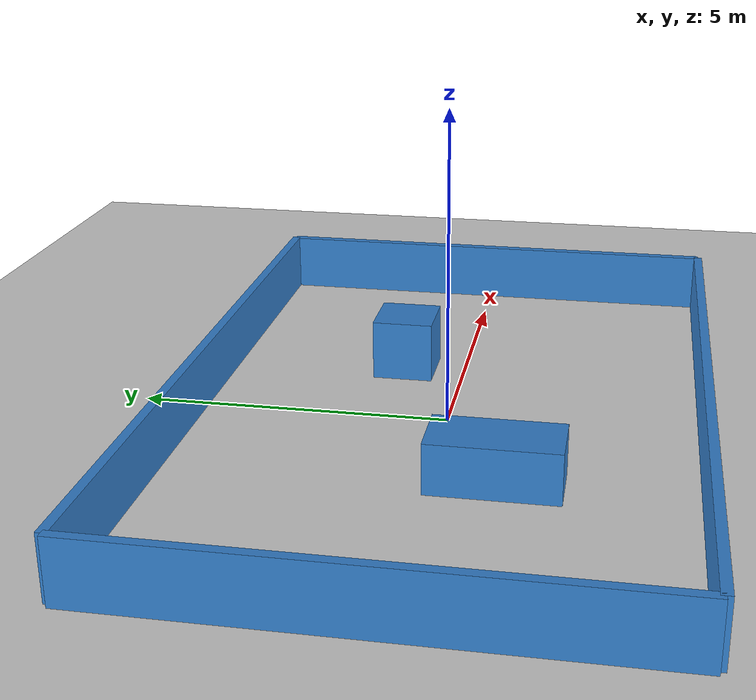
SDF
<?xml version="1.0"?><sdf version="1.6"><world name="tron_training"><include><uri>model://sun</uri></include><include><uri>model://ground_plane</uri></include>
<model name="block_a"><static>true</static><pose>2 1 0.5 0 0 0</pose><link name="body"><collision name="collision"><geometry><box><size>1 1 1</size></box></geometry></collision><visual name="visual"><geometry><box><size>1 1 1</size></box></geometry><material><ambient>0.2 0.5 0.8 1</ambient><diffuse>0.2 0.5 0.8 1</diffuse></material></visual></link></model>
<model name="block_b"><static>true</static><pose>-2 -1 0.4 0 0 0</pose><link name="body"><collision name="collision"><geometry><box><size>1 2 0.8</size></box></geometry></collision><visual name="visual"><geometry><box><size>1 2 0.8</size></box></geometry><material><ambient>0.2 0.5 0.8 1</ambient><diffuse>0.2 0.5 0.8 1</diffuse></material></visual></link></model>
<model name="wall_n"><static>true</static><pose>0 4 0.5 0 0 0</pose><link name="body"><collision name="collision"><geometry><box><size>12 0.15 1</size></box></geometry></collision><visual name="visual"><geometry><box><size>12 0.15 1</size></box></geometry><material><ambient>0.2 0.5 0.8 1</ambient><diffuse>0.2 0.5 0.8 1</diffuse></material></visual></link></model>
<model name="wall_s"><static>true</static><pose>0 -4 0.5 0 0 0</pose><link name="body"><collision name="collision"><geometry><box><size>12 0.15 1</size></box></geometry></collision><visual name="visual"><geometry><box><size>12 0.15 1</size></box></geometry><material><ambient>0.2 0.5 0.8 1</ambient><diffuse>0.2 0.5 0.8 1</diffuse></material></visual></link></model>
<model name="wall_e"><static>true</static><pose>6 0 0.5 0 0 0</pose><link name="body"><collision name="collision"><geometry><box><size>0.15 8 1</size></box></geometry></collision><visual name="visual"><geometry><box><size>0.15 8 1</size></box></geometry><material><ambient>0.2 0.5 0.8 1</ambient><diffuse>0.2 0.5 0.8 1</diffuse></material></visual></link></model>
<model name="wall_w"><static>true</static><pose>-6 0 0.5 0 0 0</pose><link name="body"><collision name="collision"><geometry><box><size>0.15 8 1</size></box></geometry></collision><visual name="visual"><geometry><box><size>0.15 8 1</size></box></geometry><material><ambient>0.2 0.5 0.8 1</ambient><diffuse>0.2 0.5 0.8 1</diffuse></material></visual></link></model>
</world></sdf>
